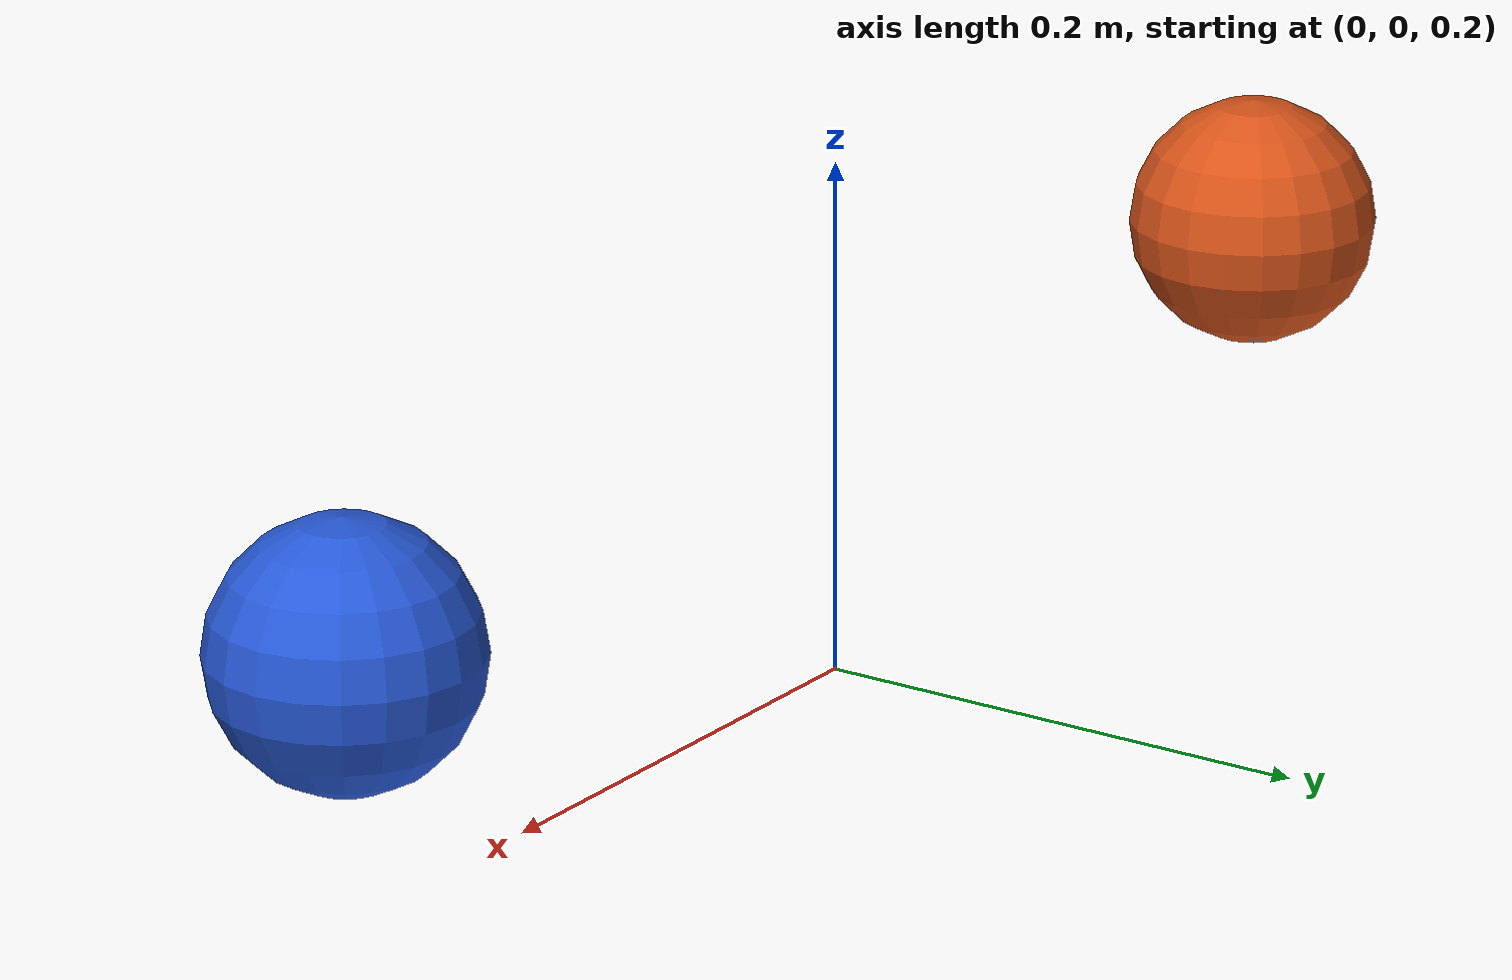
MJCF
<mujoco model="two_balls">
  <compiler angle="radian" autolimits="true"/>
  <option timestep="0.001" gravity="0 0 0" integrator="RK4"/>
  <default>
    <geom type="sphere" size="0.05" solref="0.01 1" condim="1"/>
  </default>
  <worldbody>
    <light pos="0 -1 2" dir="0 0.5 -1"/>
    <body name="a" pos="-0.3 0 0.3">
      <freejoint name="a"/>
      <geom name="a" mass="1.0" rgba=".85 .33 .1 1"/>
    </body>
    <body name="b" pos="0.3 0 0.3">
      <freejoint name="b"/>
      <geom name="b" mass="1.0" rgba=".15 .35 .85 1"/>
    </body>
  </worldbody>
  <keyframe>
    <key name="approach" qvel="1 0 0 0 0 0  -0.5 0 0 0 0 0"/>
  </keyframe>
</mujoco>
